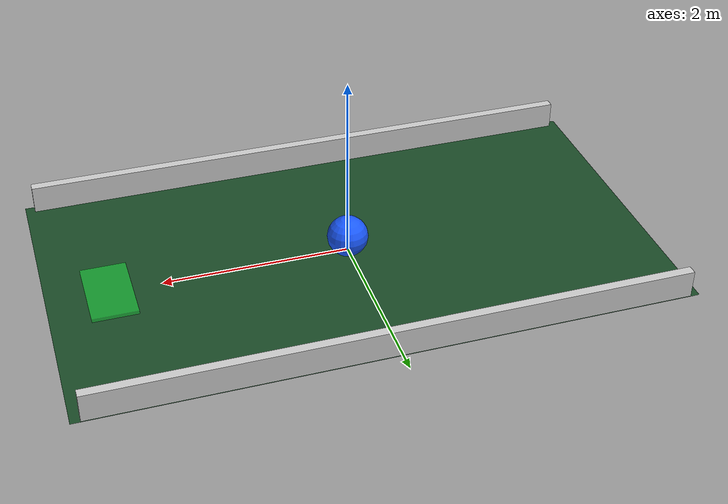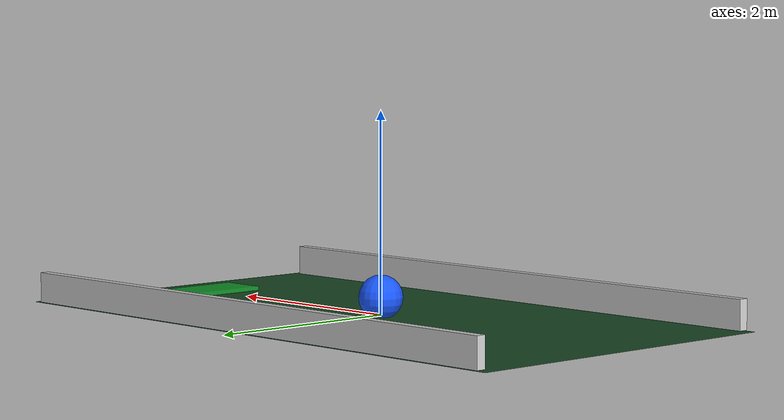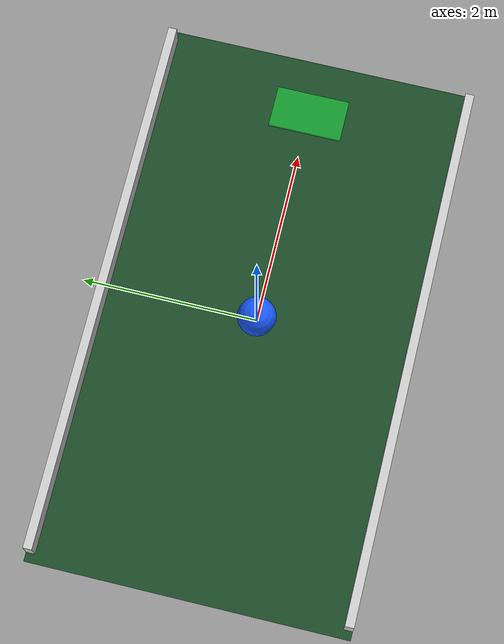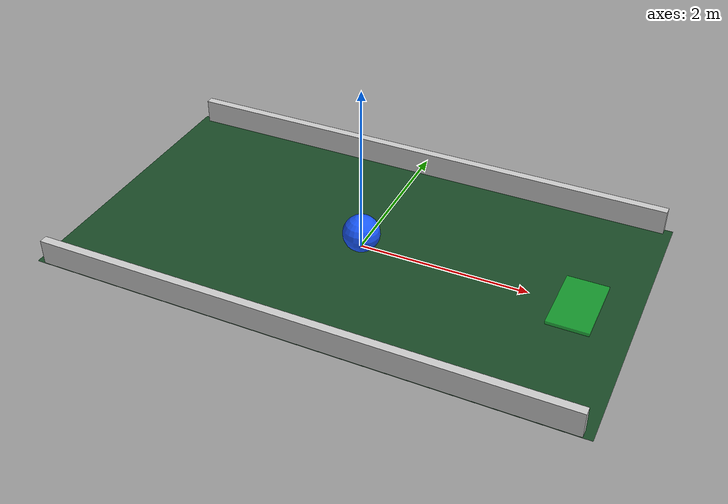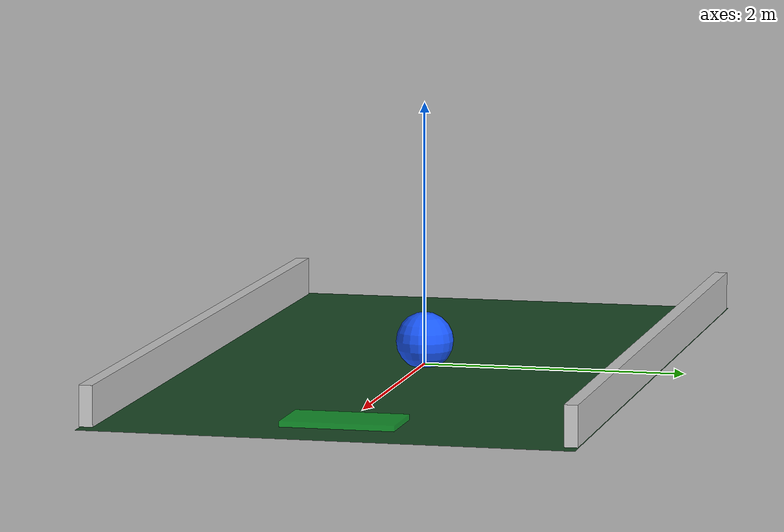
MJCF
<mujoco model="worldcup_tactical_ball_drill">
  <option timestep="0.01" gravity="0 0 -9.81"/>
  <visual>
    <global offwidth="800" offheight="528"/>
  </visual>
  <asset>
    <texture name="grid" type="2d" builtin="checker" rgb1=".12 .34 .18" rgb2=".08 .24 .12" width="512" height="512"/>
    <material name="field" texture="grid" texrepeat="8 4"/>
    <material name="robot_mat" rgba=".1 .35 1 1"/>
    <material name="ball_mat" rgba="1 .85 .1 1"/>
    <material name="goal_mat" rgba=".1 1 .25 .45"/>
  </asset>
  <worldbody>
    <light pos="0 0 5" dir="0 0 -1"/>
    <camera name="overview" pos="0 -5.2 4.2" xyaxes="1 0 0 0 .62 .78"/>
    <geom name="field" type="plane" size="3.2 1.8 .05" material="field" friction="1.2 .02 .001"/>
    <geom name="goal_zone" type="box" pos="2.55 0 .02" size=".24 .42 .02" material="goal_mat" contype="0" conaffinity="0"/>
    <geom name="left_wall" type="box" pos="0 1.75 .15" size="3.1 .05 .15" rgba=".8 .8 .8 1"/>
    <geom name="right_wall" type="box" pos="0 -1.75 .15" size="3.1 .05 .15" rgba=".8 .8 .8 1"/>
    <body name="robot" pos="0 0 .18">
      <joint name="robot_x" type="slide" axis="1 0 0" damping=".2"/>
      <joint name="robot_y" type="slide" axis="0 1 0" damping=".2"/>
      <geom name="robot_body" type="sphere" size=".22" material="robot_mat" mass="1.5" friction=".45 .02 .001"/>
    </body>
    <body name="ball" pos="0 0 .16">
      <freejoint name="ball_free"/>
      <geom name="ball_geom" type="sphere" size=".16" material="ball_mat" mass=".18" friction=".35 .02 .001"/>
    </body>
  </worldbody>
  <actuator>
    <motor joint="robot_x" gear="1" ctrllimited="true" ctrlrange="-1200 1200"/>
    <motor joint="robot_y" gear="1" ctrllimited="true" ctrlrange="-1200 1200"/>
  </actuator>
</mujoco>
